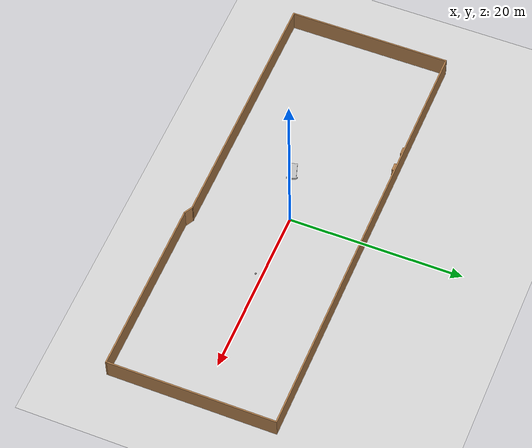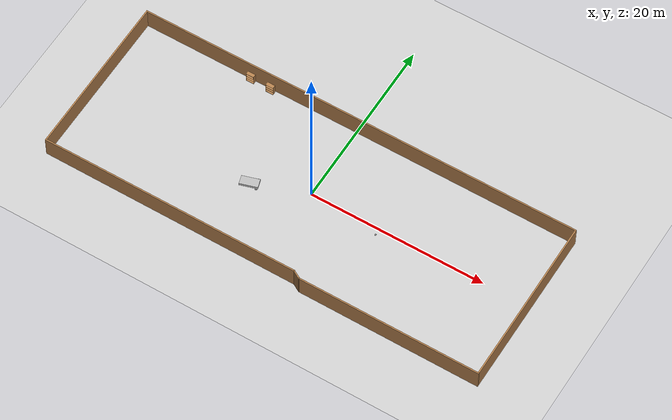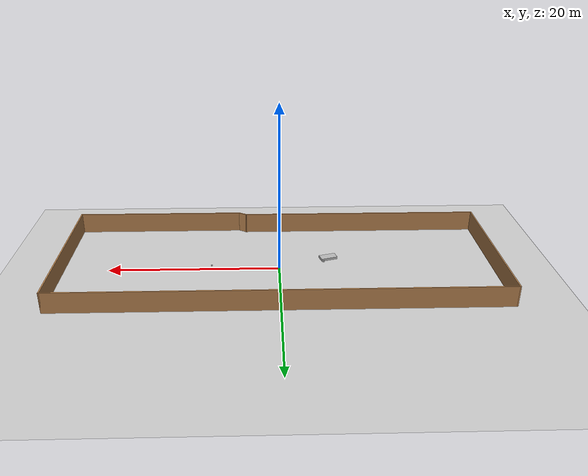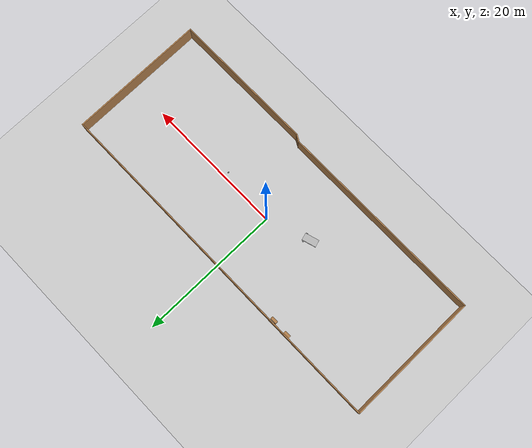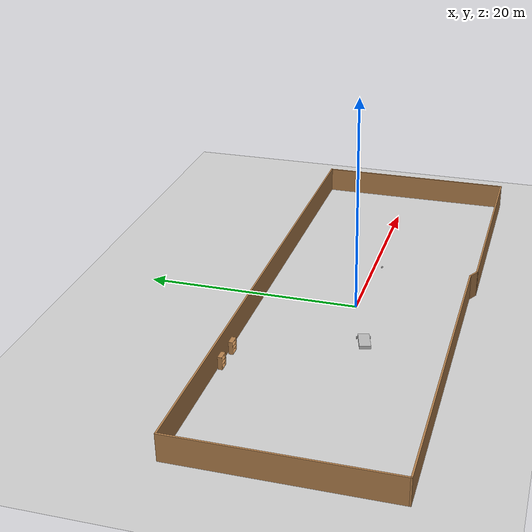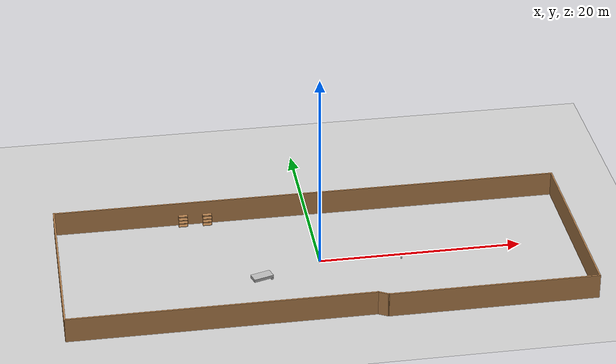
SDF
<sdf version="1.6">
 <world name="default">
  <model name="ground_plane">
   <static>1</static>
   <link name="link">
    <collision name="collision">
     <geometry><plane><normal>0 0 1</normal><size>100 100</size></plane></geometry>
     <surface>
      <contact><collide_bitmask>65535</collide_bitmask></contact>
      <friction><ode><mu>100</mu><mu2>50</mu2></ode></friction>
     </surface>
    </collision>
    <visual name="visual">
     <cast_shadows>0</cast_shadows>
     <geometry><plane><normal>0 0 1</normal><size>100 100</size></plane></geometry>
     <material>
      <script><uri>file://media/materials/scripts/gazebo.material</uri><name>Gazebo/Grey</name></script>
     </material>
    </visual>
   </link>
  </model>
  <model name="Untitled">
   <pose>-0.000951 -0.760252 0 0 -0 0</pose>
   <link name="Wall_0">
    <collision name="Wall_0_Collision">
     <geometry><box><size>18.75 0.15 2.5</size></box></geometry>
     <pose>0 0 1.25 0 -0 0</pose>
    </collision>
    <visual name="Wall_0_Visual">
     <pose>0 0 1.25 0 -0 0</pose>
     <geometry><box><size>18.75 0.15 2.5</size></box></geometry>
     <material>
      <script><uri>file://media/materials/scripts/gazebo.material</uri><name>Gazebo/Wood</name></script>
      <ambient>1 1 1 1</ambient>
     </material>
     <meta><layer>0</layer></meta>
    </visual>
    <pose>-25.3 0.263492 0 0 -0 1.5708</pose>
   </link>
   <link name="Wall_1">
    <collision name="Wall_1_Collision">
     <geometry><box><size>50.75 0.15 2.5</size></box></geometry>
     <pose>0 0 1.25 0 -0 0</pose>
    </collision>
    <visual name="Wall_1_Visual">
     <pose>0 0 1.25 0 -0 0</pose>
     <geometry><box><size>50.75 0.15 2.5</size></box></geometry>
     <material>
      <script><uri>file://media/materials/scripts/gazebo.material</uri><name>Gazebo/Wood</name></script>
      <ambient>1 1 1 1</ambient>
     </material>
     <meta><layer>0</layer></meta>
    </visual>
    <pose>1e-06 9.56349 0 0 -0 0</pose>
   </link>
   <link name="Wall_2">
    <collision name="Wall_2_Collision">
     <geometry><box><size>19.25 0.15 2.5</size></box></geometry>
     <pose>0 0 1.25 0 -0 0</pose>
    </collision>
    <visual name="Wall_2_Visual">
     <pose>0 0 1.25 0 -0 0</pose>
     <geometry><box><size>19.25 0.15 2.5</size></box></geometry>
     <material>
      <script><uri>file://media/materials/scripts/gazebo.material</uri><name>Gazebo/Wood</name></script>
      <ambient>1 1 1 1</ambient>
     </material>
     <meta><layer>0</layer></meta>
    </visual>
    <pose>25.3 0.013492 0 0 -0 -1.5708</pose>
   </link>
   <link name="Wall_3">
    <collision name="Wall_3_Collision">
     <geometry><box><size>20.5 0.15 2.5</size></box></geometry>
     <pose>0 0 1.25 0 -0 0</pose>
    </collision>
    <visual name="Wall_3_Visual">
     <pose>0 0 1.25 0 -0 0</pose>
     <geometry><box><size>20.5 0.15 2.5</size></box></geometry>
     <material>
      <script><uri>file://media/materials/scripts/gazebo.material</uri><name>Gazebo/Wood</name></script>
      <ambient>1 1 1 1</ambient>
     </material>
     <meta><layer>0</layer></meta>
    </visual>
    <pose>15.125 -9.53651 0 0 -0 3.14159</pose>
   </link>
   <link name="Wall_5">
    <collision name="Wall_5_Collision">
     <geometry><box><size>29.5 0.15 2.5</size></box></geometry>
     <pose>0 0 1.25 0 -0 0</pose>
    </collision>
    <visual name="Wall_5_Visual">
     <pose>0 0 1.25 0 -0 0</pose>
     <geometry><box><size>29.5 0.15 2.5</size></box></geometry>
     <material>
      <script><uri>file://media/materials/scripts/gazebo.material</uri><name>Gazebo/Wood</name></script>
      <ambient>1 1 1 1</ambient>
     </material>
     <meta><layer>0</layer></meta>
    </visual>
    <pose>-10.625 -9.03651 0 0 -0 0</pose>
   </link>
   <link name="Wall_6">
    <collision name="Wall_6_Collision">
     <geometry><box><size>1.17956 0.15 2.5</size></box></geometry>
     <pose>0 0 1.25 0 -0 0</pose>
    </collision>
    <visual name="Wall_6_Visual">
     <pose>0 0 1.25 0 -0 0</pose>
     <geometry><box><size>1.17956 0.15 2.5</size></box></geometry>
     <material>
      <script><uri>file://media/materials/scripts/gazebo.material</uri><name>Gazebo/Wood</name></script>
      <ambient>1 1 1 1</ambient>
     </material>
     <meta><layer>0</layer></meta>
    </visual>
    <pose>4.5 -9.28651 0 0 -0 -0.507099</pose>
   </link>
   <static>1</static>
  </model>
  <model name="mobile_base">
   <link name="chassis">
    <pose>0 0 0.25 0 -0 0</pose>
    <inertial>
     <mass>20</mass>
     <pose>-0.1 0 -0.1 0 -0 0</pose>
     <inertia><ixx>0.5</ixx><iyy>1</iyy><izz>0.1</izz><ixy>0</ixy><ixz>0</ixz><iyz>0</iyz></inertia>
    </inertial>
    <collision name="collision"><geometry><box><size>2 1 0.3</size></box></geometry></collision>
    <visual name="visual"><geometry><box><size>2 1 0.3</size></box></geometry></visual>
    <collision name="caster_collision">
     <pose>-0.8 0 -0.125 0 -0 0</pose>
     <geometry><sphere><radius>0.125</radius></sphere></geometry>
     <surface><friction><ode><mu>0</mu><mu2>0</mu2></ode></friction></surface>
    </collision>
    <visual name="caster_visual">
     <pose>-0.8 0 -0.125 0 -0 0</pose>
     <geometry><sphere><radius>0.125</radius></sphere></geometry>
    </visual>
   </link>
   <link name="left_wheel">
    <pose>0.8 0.6 0.125 -0 1.5707 1.5707</pose>
    <collision name="collision">
     <geometry><cylinder><radius>0.125</radius><length>0.05</length></cylinder></geometry>
    </collision>
    <visual name="visual">
     <geometry><cylinder><radius>0.125</radius><length>0.05</length></cylinder></geometry>
    </visual>
    <inertial>
     <inertia><ixx>1</ixx><ixy>0</ixy><ixz>0</ixz><iyy>1</iyy><iyz>0</iyz><izz>1</izz></inertia>
     <mass>1</mass>
    </inertial>
   </link>
   <link name="right_wheel">
    <pose>0.8 -0.6 0.125 -0 1.5707 1.5707</pose>
    <collision name="collision">
     <geometry><cylinder><radius>0.125</radius><length>0.05</length></cylinder></geometry>
    </collision>
    <visual name="visual">
     <geometry><cylinder><radius>0.125</radius><length>0.05</length></cylinder></geometry>
    </visual>
    <inertial>
     <inertia><ixx>1</ixx><ixy>0</ixy><ixz>0</ixz><iyy>1</iyy><iyz>0</iyz><izz>1</izz></inertia>
     <mass>1</mass>
    </inertial>
   </link>
   <joint name="left_wheel_hinge" type="revolute">
    <pose>0 0 -0.03 0 -0 0</pose>
    <child>left_wheel</child>
    <parent>chassis</parent>
    <axis>
     <use_parent_model_frame>1</use_parent_model_frame>
     <xyz>0 1 0</xyz>
     <limit><lower>-1e+16</lower><upper>1e+16</upper></limit>
     <dynamics><spring_reference>0</spring_reference><spring_stiffness>0</spring_stiffness></dynamics>
    </axis>
   </joint>
   <joint name="right_wheel_hinge" type="revolute">
    <pose>0 0 0.03 0 -0 0</pose>
    <child>right_wheel</child>
    <parent>chassis</parent>
    <axis>
     <use_parent_model_frame>1</use_parent_model_frame>
     <xyz>0 1 0</xyz>
     <limit><lower>-1e+16</lower><upper>1e+16</upper></limit>
     <dynamics><spring_reference>0</spring_reference><spring_stiffness>0</spring_stiffness></dynamics>
    </axis>
   </joint>
   <pose>-5.97283 -2.14689 0 5e-06 -0 0.298754</pose>
  </model>
  <model name="my_ball">
   <link name="link_0">
    <inertial>
     <mass>1</mass>
     <inertia><ixx>0.1</ixx><ixy>0</ixy><ixz>0</ixz><iyy>0.1</iyy><iyz>0</iyz><izz>0.1</izz></inertia>
    </inertial>
    <visual name="visual">
     <geometry><sphere><radius>0.1</radius></sphere></geometry>
     <material>
      <lighting>1</lighting>
      <script><uri>file://media/materials/scripts/gazebo.material</uri><name>Gazebo/Grey</name></script>
      <shader type="vertex"><normal_map>__default__</normal_map></shader>
      <ambient>1 1 1 1</ambient>
      <diffuse>0.7 0.7 0.7 1</diffuse>
      <specular>0.01 0.01 0.01 1</specular>
      <emissive>0 0 0 1</emissive>
     </material>
    </visual>
    <collision name="collision">
     <geometry><sphere><radius>0.1</radius></sphere></geometry>
     <surface>
      <friction>
       <ode><mu>1</mu><mu2>1</mu2><fdir1>0 0 0</fdir1><slip1>0</slip1><slip2>0</slip2></ode>
       <torsional>
        <coefficient>1</coefficient>
        <patch_radius>0</patch_radius>
        <surface_radius>0</surface_radius>
        <use_patch_radius>1</use_patch_radius>
        <ode><slip>0</slip></ode>
       </torsional>
      </friction>
      <bounce><restitution_coefficient>0</restitution_coefficient><threshold>1e+06</threshold></bounce>
      <contact>
       <collide_without_contact>0</collide_without_contact>
       <collide_without_contact_bitmask>1</collide_without_contact_bitmask>
       <collide_bitmask>1</collide_bitmask>
       <ode>
        <soft_cfm>0</soft_cfm>
        <soft_erp>0.2</soft_erp>
        <kp>1e+13</kp>
        <kd>1</kd>
        <max_vel>0.01</max_vel>
        <min_depth>0</min_depth>
       </ode>
       <bullet>
        <split_impulse>1</split_impulse>
        <split_impulse_penetration_threshold>-0.01</split_impulse_penetration_threshold>
        <soft_cfm>0</soft_cfm>
        <soft_erp>0.2</soft_erp>
        <kp>1e+13</kp>
        <kd>1</kd>
       </bullet>
      </contact>
     </surface>
    </collision>
   </link>
   <static>0</static>
   <pose>7.97399 -0.758727 0.1 0 -0 0</pose>
  </model>
  <model name="bookshelf">
   <static>1</static>
   <link name="link">
    <inertial><mass>1</mass></inertial>
    <collision name="back">
     <pose>0 0.005 0.6 0 -0 0</pose>
     <geometry><box><size>0.9 0.01 1.2</size></box></geometry>
    </collision>
    <visual name="visual1">
     <pose>0 0.005 0.6 0 -0 0</pose>
     <geometry><box><size>0.9 0.01 1.2</size></box></geometry>
     <material>
      <script><uri>file://media/materials/scripts/gazebo.material</uri><name>Gazebo/Wood</name></script>
     </material>
    </visual>
    <collision name="left_side">
     <pose>0.45 -0.195 0.6 0 -0 0</pose>
     <geometry><box><size>0.02 0.4 1.2</size></box></geometry>
    </collision>
    <visual name="visual2">
     <pose>0.45 -0.195 0.6 0 -0 0</pose>
     <geometry><box><size>0.02 0.4 1.2</size></box></geometry>
     <material>
      <script><uri>file://media/materials/scripts/gazebo.material</uri><name>Gazebo/Wood</name></script>
     </material>
    </visual>
    <collision name="right_side">
     <pose>-0.45 -0.195 0.6 0 -0 0</pose>
     <geometry><box><size>0.02 0.4 1.2</size></box></geometry>
    </collision>
    <visual name="visual3">
     <pose>-0.45 -0.195 0.6 0 -0 0</pose>
     <geometry><box><size>0.02 0.4 1.2</size></box></geometry>
     <material>
      <script><uri>file://media/materials/scripts/gazebo.material</uri><name>Gazebo/Wood</name></script>
     </material>
    </visual>
    <collision name="bottom">
     <pose>0 -0.195 0.03 0 -0 0</pose>
     <geometry><box><size>0.88 0.4 0.06</size></box></geometry>
    </collision>
    <visual name="visual4">
     <pose>0 -0.195 0.03 0 -0 0</pose>
     <geometry><box><size>0.88 0.4 0.06</size></box></geometry>
     <material>
      <script><uri>file://media/materials/scripts/gazebo.material</uri><name>Gazebo/Wood</name></script>
     </material>
    </visual>
    <collision name="top">
     <pose>0 -0.195 1.19 0 -0 0</pose>
     <geometry><box><size>0.88 0.4 0.02</size></box></geometry>
    </collision>
    <visual name="visual5">
     <pose>0 -0.195 1.19 0 -0 0</pose>
     <geometry><box><size>0.88 0.4 0.02</size></box></geometry>
     <material>
      <script><uri>file://media/materials/scripts/gazebo.material</uri><name>Gazebo/Wood</name></script>
     </material>
    </visual>
    <collision name="low_shelf">
     <pose>0 -0.195 0.43 0 -0 0</pose>
     <geometry><box><size>0.88 0.4 0.02</size></box></geometry>
    </collision>
    <visual name="visual6">
     <pose>0 -0.195 0.43 0 -0 0</pose>
     <geometry><box><size>0.88 0.4 0.02</size></box></geometry>
     <material>
      <script><uri>file://media/materials/scripts/gazebo.material</uri><name>Gazebo/Wood</name></script>
     </material>
    </visual>
    <collision name="high_shelf">
     <pose>0 -0.195 0.8 0 -0 0</pose>
     <geometry><box><size>0.88 0.4 0.02</size></box></geometry>
    </collision>
    <visual name="visual7">
     <pose>0 -0.195 0.8 0 -0 0</pose>
     <geometry><box><size>0.88 0.4 0.02</size></box></geometry>
     <material>
      <script><uri>file://media/materials/scripts/gazebo.material</uri><name>Gazebo/Wood</name></script>
     </material>
    </visual>
   </link>
   <pose>-12.5142 8.67703 0 0 -0 0</pose>
  </model>
  <model name="bookshelf_0">
   <static>1</static>
   <link name="link">
    <inertial><mass>1</mass></inertial>
    <collision name="back">
     <pose>0 0.005 0.6 0 -0 0</pose>
     <geometry><box><size>0.9 0.01 1.2</size></box></geometry>
    </collision>
    <visual name="visual1">
     <pose>0 0.005 0.6 0 -0 0</pose>
     <geometry><box><size>0.9 0.01 1.2</size></box></geometry>
     <material>
      <script><uri>file://media/materials/scripts/gazebo.material</uri><name>Gazebo/Wood</name></script>
     </material>
    </visual>
    <collision name="left_side">
     <pose>0.45 -0.195 0.6 0 -0 0</pose>
     <geometry><box><size>0.02 0.4 1.2</size></box></geometry>
    </collision>
    <visual name="visual2">
     <pose>0.45 -0.195 0.6 0 -0 0</pose>
     <geometry><box><size>0.02 0.4 1.2</size></box></geometry>
     <material>
      <script><uri>file://media/materials/scripts/gazebo.material</uri><name>Gazebo/Wood</name></script>
     </material>
    </visual>
    <collision name="right_side">
     <pose>-0.45 -0.195 0.6 0 -0 0</pose>
     <geometry><box><size>0.02 0.4 1.2</size></box></geometry>
    </collision>
    <visual name="visual3">
     <pose>-0.45 -0.195 0.6 0 -0 0</pose>
     <geometry><box><size>0.02 0.4 1.2</size></box></geometry>
     <material>
      <script><uri>file://media/materials/scripts/gazebo.material</uri><name>Gazebo/Wood</name></script>
     </material>
    </visual>
    <collision name="bottom">
     <pose>0 -0.195 0.03 0 -0 0</pose>
     <geometry><box><size>0.88 0.4 0.06</size></box></geometry>
    </collision>
    <visual name="visual4">
     <pose>0 -0.195 0.03 0 -0 0</pose>
     <geometry><box><size>0.88 0.4 0.06</size></box></geometry>
     <material>
      <script><uri>file://media/materials/scripts/gazebo.material</uri><name>Gazebo/Wood</name></script>
     </material>
    </visual>
    <collision name="top">
     <pose>0 -0.195 1.19 0 -0 0</pose>
     <geometry><box><size>0.88 0.4 0.02</size></box></geometry>
    </collision>
    <visual name="visual5">
     <pose>0 -0.195 1.19 0 -0 0</pose>
     <geometry><box><size>0.88 0.4 0.02</size></box></geometry>
     <material>
      <script><uri>file://media/materials/scripts/gazebo.material</uri><name>Gazebo/Wood</name></script>
     </material>
    </visual>
    <collision name="low_shelf">
     <pose>0 -0.195 0.43 0 -0 0</pose>
     <geometry><box><size>0.88 0.4 0.02</size></box></geometry>
    </collision>
    <visual name="visual6">
     <pose>0 -0.195 0.43 0 -0 0</pose>
     <geometry><box><size>0.88 0.4 0.02</size></box></geometry>
     <material>
      <script><uri>file://media/materials/scripts/gazebo.material</uri><name>Gazebo/Wood</name></script>
     </material>
    </visual>
    <collision name="high_shelf">
     <pose>0 -0.195 0.8 0 -0 0</pose>
     <geometry><box><size>0.88 0.4 0.02</size></box></geometry>
    </collision>
    <visual name="visual7">
     <pose>0 -0.195 0.8 0 -0 0</pose>
     <geometry><box><size>0.88 0.4 0.02</size></box></geometry>
     <material>
      <script><uri>file://media/materials/scripts/gazebo.material</uri><name>Gazebo/Wood</name></script>
     </material>
    </visual>
   </link>
   <pose>-10.1043 8.58363 0 0 -0 0</pose>
  </model>
 </world>
</sdf>
